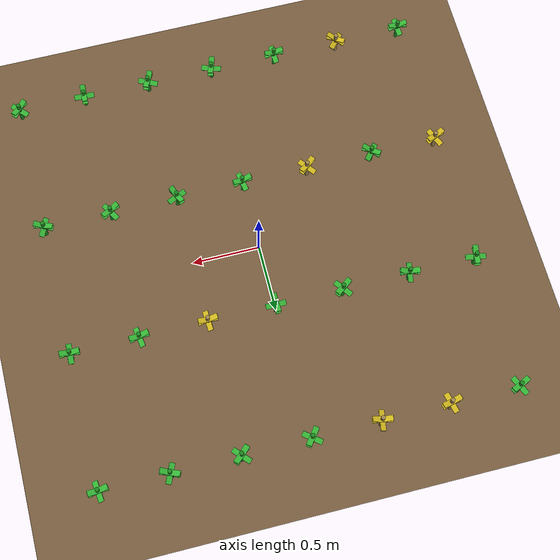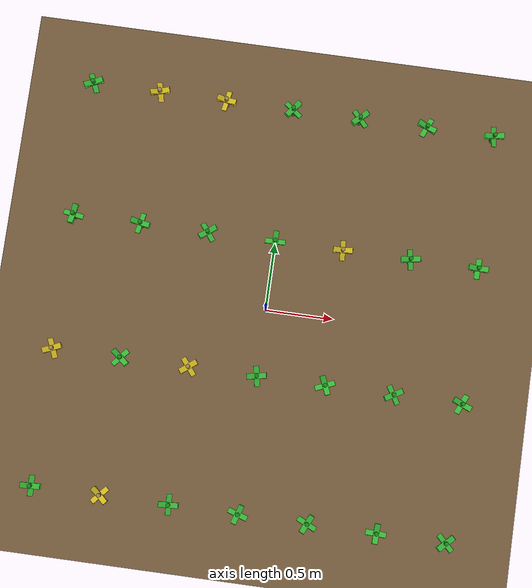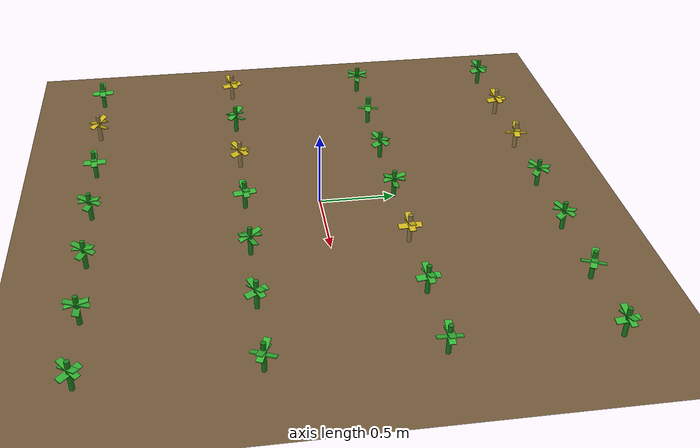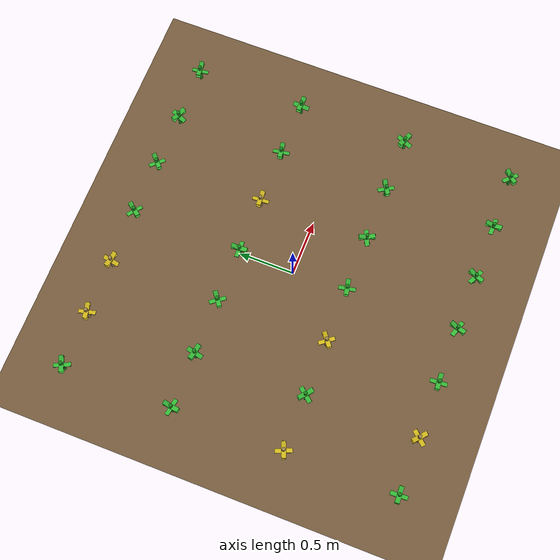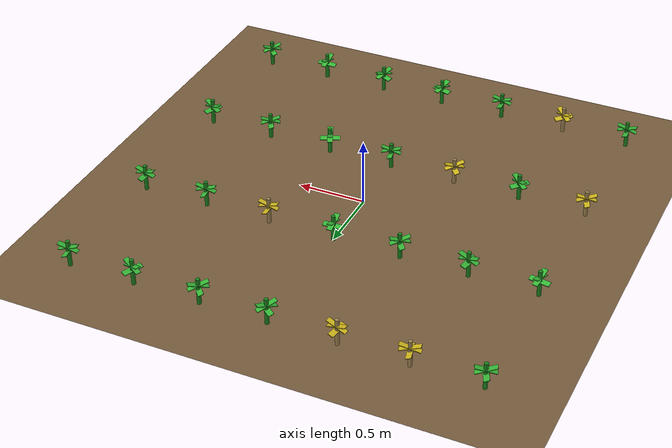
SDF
<sdf version="1.6">
 <world name="farm_world">
  <include><uri>model://sun</uri></include>
  <model name="soil_ground">
   <static>true</static>
   <link name="link">
    <collision name="collision">
     <geometry><plane><normal>0 0 1</normal><size>100 100</size></plane></geometry>
     <surface><friction><ode><mu>100</mu><mu2>50</mu2></ode></friction></surface>
    </collision>
    <visual name="visual">
     <cast_shadows>false</cast_shadows>
     <geometry><plane><normal>0 0 1</normal><size>100 100</size></plane></geometry>
     <material>
      <script><uri>file://media/materials/scripts/gazebo.material</uri><name>Gazebo/Mud</name></script>
      <ambient>0.45 0.35 0.23 1</ambient>
      <diffuse>0.45 0.35 0.23 1</diffuse>
     </material>
    </visual>
   </link>
  </model>
  <model name="plant_28">
   <pose>-1.5 -1.5 0 0 0 0.03999692535958256</pose>
   <static>true</static>
   <link name="link">
    <visual name="stem">
     <pose>0 0 0.1 0 0 0</pose>
     <geometry><cylinder><radius>0.015</radius><length>0.2</length></cylinder></geometry>
     <material><ambient>0.1 0.5 0.1 1</ambient><diffuse>0.1 0.5 0.1 1</diffuse></material>
    </visual>
    <visual name="leaf_1">
     <pose>0 0 0.15 0 0.3 0</pose>
     <geometry><box><size>0.15 0.04 0.005</size></box></geometry>
     <material><ambient>0.2 0.7 0.2 1</ambient><diffuse>0.2 0.7 0.2 1</diffuse></material>
    </visual>
    <visual name="leaf_2">
     <pose>0 0 0.15 0 -0.3 0</pose>
     <geometry><box><size>0.15 0.04 0.005</size></box></geometry>
     <material><ambient>0.2 0.7 0.2 1</ambient><diffuse>0.2 0.7 0.2 1</diffuse></material>
    </visual>
    <visual name="leaf_3">
     <pose>0 0 0.12 0.3 0 1.57</pose>
     <geometry><box><size>0.15 0.04 0.005</size></box></geometry>
     <material><ambient>0.2 0.7 0.2 1</ambient><diffuse>0.2 0.7 0.2 1</diffuse></material>
    </visual>
    <collision name="collision">
     <pose>0 0 0.1 0 0 0</pose>
     <geometry><cylinder><radius>0.05</radius><length>0.2</length></cylinder></geometry>
    </collision>
   </link>
  </model>
  <model name="plant_29">
   <pose>-1.5 -0.5 0 0 0 0.40158374649407036</pose>
   <static>true</static>
   <link name="link">
    <visual name="stem">
     <pose>0 0 0.1 0 0 0</pose>
     <geometry><cylinder><radius>0.015</radius><length>0.2</length></cylinder></geometry>
     <material><ambient>0.6 0.5 0.3 1</ambient><diffuse>0.6 0.5 0.3 1</diffuse></material>
    </visual>
    <visual name="leaf_1">
     <pose>0 0 0.15 0 0.3 0</pose>
     <geometry><box><size>0.15 0.04 0.005</size></box></geometry>
     <material><ambient>0.8 0.7 0.1 1</ambient><diffuse>0.8 0.7 0.1 1</diffuse></material>
    </visual>
    <visual name="leaf_2">
     <pose>0 0 0.15 0 -0.3 0</pose>
     <geometry><box><size>0.15 0.04 0.005</size></box></geometry>
     <material><ambient>0.8 0.7 0.1 1</ambient><diffuse>0.8 0.7 0.1 1</diffuse></material>
    </visual>
    <visual name="leaf_3">
     <pose>0 0 0.12 0.3 0 1.57</pose>
     <geometry><box><size>0.15 0.04 0.005</size></box></geometry>
     <material><ambient>0.8 0.7 0.1 1</ambient><diffuse>0.8 0.7 0.1 1</diffuse></material>
    </visual>
    <collision name="collision">
     <pose>0 0 0.1 0 0 0</pose>
     <geometry><cylinder><radius>0.05</radius><length>0.2</length></cylinder></geometry>
    </collision>
   </link>
  </model>
  <model name="plant_30">
   <pose>-1.5 0.5 0 0 0 1.4055679642116938</pose>
   <static>true</static>
   <link name="link">
    <visual name="stem">
     <pose>0 0 0.1 0 0 0</pose>
     <geometry><cylinder><radius>0.015</radius><length>0.2</length></cylinder></geometry>
     <material><ambient>0.1 0.5 0.1 1</ambient><diffuse>0.1 0.5 0.1 1</diffuse></material>
    </visual>
    <visual name="leaf_1">
     <pose>0 0 0.15 0 0.3 0</pose>
     <geometry><box><size>0.15 0.04 0.005</size></box></geometry>
     <material><ambient>0.2 0.7 0.2 1</ambient><diffuse>0.2 0.7 0.2 1</diffuse></material>
    </visual>
    <visual name="leaf_2">
     <pose>0 0 0.15 0 -0.3 0</pose>
     <geometry><box><size>0.15 0.04 0.005</size></box></geometry>
     <material><ambient>0.2 0.7 0.2 1</ambient><diffuse>0.2 0.7 0.2 1</diffuse></material>
    </visual>
    <visual name="leaf_3">
     <pose>0 0 0.12 0.3 0 1.57</pose>
     <geometry><box><size>0.15 0.04 0.005</size></box></geometry>
     <material><ambient>0.2 0.7 0.2 1</ambient><diffuse>0.2 0.7 0.2 1</diffuse></material>
    </visual>
    <collision name="collision">
     <pose>0 0 0.1 0 0 0</pose>
     <geometry><cylinder><radius>0.05</radius><length>0.2</length></cylinder></geometry>
    </collision>
   </link>
  </model>
  <model name="plant_31">
   <pose>-1.5 1.5 0 0 0 0.42245047115309836</pose>
   <static>true</static>
   <link name="link">
    <visual name="stem">
     <pose>0 0 0.1 0 0 0</pose>
     <geometry><cylinder><radius>0.015</radius><length>0.2</length></cylinder></geometry>
     <material><ambient>0.1 0.5 0.1 1</ambient><diffuse>0.1 0.5 0.1 1</diffuse></material>
    </visual>
    <visual name="leaf_1">
     <pose>0 0 0.15 0 0.3 0</pose>
     <geometry><box><size>0.15 0.04 0.005</size></box></geometry>
     <material><ambient>0.2 0.7 0.2 1</ambient><diffuse>0.2 0.7 0.2 1</diffuse></material>
    </visual>
    <visual name="leaf_2">
     <pose>0 0 0.15 0 -0.3 0</pose>
     <geometry><box><size>0.15 0.04 0.005</size></box></geometry>
     <material><ambient>0.2 0.7 0.2 1</ambient><diffuse>0.2 0.7 0.2 1</diffuse></material>
    </visual>
    <visual name="leaf_3">
     <pose>0 0 0.12 0.3 0 1.57</pose>
     <geometry><box><size>0.15 0.04 0.005</size></box></geometry>
     <material><ambient>0.2 0.7 0.2 1</ambient><diffuse>0.2 0.7 0.2 1</diffuse></material>
    </visual>
    <collision name="collision">
     <pose>0 0 0.1 0 0 0</pose>
     <geometry><cylinder><radius>0.05</radius><length>0.2</length></cylinder></geometry>
    </collision>
   </link>
  </model>
  <model name="plant_32">
   <pose>-1.0 -1.5 0 0 0 2.4127600742564197</pose>
   <static>true</static>
   <link name="link">
    <visual name="stem">
     <pose>0 0 0.1 0 0 0</pose>
     <geometry><cylinder><radius>0.015</radius><length>0.2</length></cylinder></geometry>
     <material><ambient>0.6 0.5 0.3 1</ambient><diffuse>0.6 0.5 0.3 1</diffuse></material>
    </visual>
    <visual name="leaf_1">
     <pose>0 0 0.15 0 0.3 0</pose>
     <geometry><box><size>0.15 0.04 0.005</size></box></geometry>
     <material><ambient>0.8 0.7 0.1 1</ambient><diffuse>0.8 0.7 0.1 1</diffuse></material>
    </visual>
    <visual name="leaf_2">
     <pose>0 0 0.15 0 -0.3 0</pose>
     <geometry><box><size>0.15 0.04 0.005</size></box></geometry>
     <material><ambient>0.8 0.7 0.1 1</ambient><diffuse>0.8 0.7 0.1 1</diffuse></material>
    </visual>
    <visual name="leaf_3">
     <pose>0 0 0.12 0.3 0 1.57</pose>
     <geometry><box><size>0.15 0.04 0.005</size></box></geometry>
     <material><ambient>0.8 0.7 0.1 1</ambient><diffuse>0.8 0.7 0.1 1</diffuse></material>
    </visual>
    <collision name="collision">
     <pose>0 0 0.1 0 0 0</pose>
     <geometry><cylinder><radius>0.05</radius><length>0.2</length></cylinder></geometry>
    </collision>
   </link>
  </model>
  <model name="plant_33">
   <pose>-1.0 -0.5 0 0 0 2.443310556562613</pose>
   <static>true</static>
   <link name="link">
    <visual name="stem">
     <pose>0 0 0.1 0 0 0</pose>
     <geometry><cylinder><radius>0.015</radius><length>0.2</length></cylinder></geometry>
     <material><ambient>0.1 0.5 0.1 1</ambient><diffuse>0.1 0.5 0.1 1</diffuse></material>
    </visual>
    <visual name="leaf_1">
     <pose>0 0 0.15 0 0.3 0</pose>
     <geometry><box><size>0.15 0.04 0.005</size></box></geometry>
     <material><ambient>0.2 0.7 0.2 1</ambient><diffuse>0.2 0.7 0.2 1</diffuse></material>
    </visual>
    <visual name="leaf_2">
     <pose>0 0 0.15 0 -0.3 0</pose>
     <geometry><box><size>0.15 0.04 0.005</size></box></geometry>
     <material><ambient>0.2 0.7 0.2 1</ambient><diffuse>0.2 0.7 0.2 1</diffuse></material>
    </visual>
    <visual name="leaf_3">
     <pose>0 0 0.12 0.3 0 1.57</pose>
     <geometry><box><size>0.15 0.04 0.005</size></box></geometry>
     <material><ambient>0.2 0.7 0.2 1</ambient><diffuse>0.2 0.7 0.2 1</diffuse></material>
    </visual>
    <collision name="collision">
     <pose>0 0 0.1 0 0 0</pose>
     <geometry><cylinder><radius>0.05</radius><length>0.2</length></cylinder></geometry>
    </collision>
   </link>
  </model>
  <model name="plant_34">
   <pose>-1.0 0.5 0 0 0 2.9390886575747928</pose>
   <static>true</static>
   <link name="link">
    <visual name="stem">
     <pose>0 0 0.1 0 0 0</pose>
     <geometry><cylinder><radius>0.015</radius><length>0.2</length></cylinder></geometry>
     <material><ambient>0.1 0.5 0.1 1</ambient><diffuse>0.1 0.5 0.1 1</diffuse></material>
    </visual>
    <visual name="leaf_1">
     <pose>0 0 0.15 0 0.3 0</pose>
     <geometry><box><size>0.15 0.04 0.005</size></box></geometry>
     <material><ambient>0.2 0.7 0.2 1</ambient><diffuse>0.2 0.7 0.2 1</diffuse></material>
    </visual>
    <visual name="leaf_2">
     <pose>0 0 0.15 0 -0.3 0</pose>
     <geometry><box><size>0.15 0.04 0.005</size></box></geometry>
     <material><ambient>0.2 0.7 0.2 1</ambient><diffuse>0.2 0.7 0.2 1</diffuse></material>
    </visual>
    <visual name="leaf_3">
     <pose>0 0 0.12 0.3 0 1.57</pose>
     <geometry><box><size>0.15 0.04 0.005</size></box></geometry>
     <material><ambient>0.2 0.7 0.2 1</ambient><diffuse>0.2 0.7 0.2 1</diffuse></material>
    </visual>
    <collision name="collision">
     <pose>0 0 0.1 0 0 0</pose>
     <geometry><cylinder><radius>0.05</radius><length>0.2</length></cylinder></geometry>
    </collision>
   </link>
  </model>
  <model name="plant_35">
   <pose>-1.0 1.5 0 0 0 0.23374821497194523</pose>
   <static>true</static>
   <link name="link">
    <visual name="stem">
     <pose>0 0 0.1 0 0 0</pose>
     <geometry><cylinder><radius>0.015</radius><length>0.2</length></cylinder></geometry>
     <material><ambient>0.6 0.5 0.3 1</ambient><diffuse>0.6 0.5 0.3 1</diffuse></material>
    </visual>
    <visual name="leaf_1">
     <pose>0 0 0.15 0 0.3 0</pose>
     <geometry><box><size>0.15 0.04 0.005</size></box></geometry>
     <material><ambient>0.8 0.7 0.1 1</ambient><diffuse>0.8 0.7 0.1 1</diffuse></material>
    </visual>
    <visual name="leaf_2">
     <pose>0 0 0.15 0 -0.3 0</pose>
     <geometry><box><size>0.15 0.04 0.005</size></box></geometry>
     <material><ambient>0.8 0.7 0.1 1</ambient><diffuse>0.8 0.7 0.1 1</diffuse></material>
    </visual>
    <visual name="leaf_3">
     <pose>0 0 0.12 0.3 0 1.57</pose>
     <geometry><box><size>0.15 0.04 0.005</size></box></geometry>
     <material><ambient>0.8 0.7 0.1 1</ambient><diffuse>0.8 0.7 0.1 1</diffuse></material>
    </visual>
    <collision name="collision">
     <pose>0 0 0.1 0 0 0</pose>
     <geometry><cylinder><radius>0.05</radius><length>0.2</length></cylinder></geometry>
    </collision>
   </link>
  </model>
  <model name="plant_36">
   <pose>-0.5 -1.5 0 0 0 0.05030886176328195</pose>
   <static>true</static>
   <link name="link">
    <visual name="stem">
     <pose>0 0 0.1 0 0 0</pose>
     <geometry><cylinder><radius>0.015</radius><length>0.2</length></cylinder></geometry>
     <material><ambient>0.1 0.5 0.1 1</ambient><diffuse>0.1 0.5 0.1 1</diffuse></material>
    </visual>
    <visual name="leaf_1">
     <pose>0 0 0.15 0 0.3 0</pose>
     <geometry><box><size>0.15 0.04 0.005</size></box></geometry>
     <material><ambient>0.2 0.7 0.2 1</ambient><diffuse>0.2 0.7 0.2 1</diffuse></material>
    </visual>
    <visual name="leaf_2">
     <pose>0 0 0.15 0 -0.3 0</pose>
     <geometry><box><size>0.15 0.04 0.005</size></box></geometry>
     <material><ambient>0.2 0.7 0.2 1</ambient><diffuse>0.2 0.7 0.2 1</diffuse></material>
    </visual>
    <visual name="leaf_3">
     <pose>0 0 0.12 0.3 0 1.57</pose>
     <geometry><box><size>0.15 0.04 0.005</size></box></geometry>
     <material><ambient>0.2 0.7 0.2 1</ambient><diffuse>0.2 0.7 0.2 1</diffuse></material>
    </visual>
    <collision name="collision">
     <pose>0 0 0.1 0 0 0</pose>
     <geometry><cylinder><radius>0.05</radius><length>0.2</length></cylinder></geometry>
    </collision>
   </link>
  </model>
  <model name="plant_37">
   <pose>-0.5 -0.5 0 0 0 0.6674229697945631</pose>
   <static>true</static>
   <link name="link">
    <visual name="stem">
     <pose>0 0 0.1 0 0 0</pose>
     <geometry><cylinder><radius>0.015</radius><length>0.2</length></cylinder></geometry>
     <material><ambient>0.6 0.5 0.3 1</ambient><diffuse>0.6 0.5 0.3 1</diffuse></material>
    </visual>
    <visual name="leaf_1">
     <pose>0 0 0.15 0 0.3 0</pose>
     <geometry><box><size>0.15 0.04 0.005</size></box></geometry>
     <material><ambient>0.8 0.7 0.1 1</ambient><diffuse>0.8 0.7 0.1 1</diffuse></material>
    </visual>
    <visual name="leaf_2">
     <pose>0 0 0.15 0 -0.3 0</pose>
     <geometry><box><size>0.15 0.04 0.005</size></box></geometry>
     <material><ambient>0.8 0.7 0.1 1</ambient><diffuse>0.8 0.7 0.1 1</diffuse></material>
    </visual>
    <visual name="leaf_3">
     <pose>0 0 0.12 0.3 0 1.57</pose>
     <geometry><box><size>0.15 0.04 0.005</size></box></geometry>
     <material><ambient>0.8 0.7 0.1 1</ambient><diffuse>0.8 0.7 0.1 1</diffuse></material>
    </visual>
    <collision name="collision">
     <pose>0 0 0.1 0 0 0</pose>
     <geometry><cylinder><radius>0.05</radius><length>0.2</length></cylinder></geometry>
    </collision>
   </link>
  </model>
  <model name="plant_38">
   <pose>-0.5 0.5 0 0 0 0.6406084837413049</pose>
   <static>true</static>
   <link name="link">
    <visual name="stem">
     <pose>0 0 0.1 0 0 0</pose>
     <geometry><cylinder><radius>0.015</radius><length>0.2</length></cylinder></geometry>
     <material><ambient>0.1 0.5 0.1 1</ambient><diffuse>0.1 0.5 0.1 1</diffuse></material>
    </visual>
    <visual name="leaf_1">
     <pose>0 0 0.15 0 0.3 0</pose>
     <geometry><box><size>0.15 0.04 0.005</size></box></geometry>
     <material><ambient>0.2 0.7 0.2 1</ambient><diffuse>0.2 0.7 0.2 1</diffuse></material>
    </visual>
    <visual name="leaf_2">
     <pose>0 0 0.15 0 -0.3 0</pose>
     <geometry><box><size>0.15 0.04 0.005</size></box></geometry>
     <material><ambient>0.2 0.7 0.2 1</ambient><diffuse>0.2 0.7 0.2 1</diffuse></material>
    </visual>
    <visual name="leaf_3">
     <pose>0 0 0.12 0.3 0 1.57</pose>
     <geometry><box><size>0.15 0.04 0.005</size></box></geometry>
     <material><ambient>0.2 0.7 0.2 1</ambient><diffuse>0.2 0.7 0.2 1</diffuse></material>
    </visual>
    <collision name="collision">
     <pose>0 0 0.1 0 0 0</pose>
     <geometry><cylinder><radius>0.05</radius><length>0.2</length></cylinder></geometry>
    </collision>
   </link>
  </model>
  <model name="plant_39">
   <pose>-0.5 1.5 0 0 0 2.9637764135964964</pose>
   <static>true</static>
   <link name="link">
    <visual name="stem">
     <pose>0 0 0.1 0 0 0</pose>
     <geometry><cylinder><radius>0.015</radius><length>0.2</length></cylinder></geometry>
     <material><ambient>0.6 0.5 0.3 1</ambient><diffuse>0.6 0.5 0.3 1</diffuse></material>
    </visual>
    <visual name="leaf_1">
     <pose>0 0 0.15 0 0.3 0</pose>
     <geometry><box><size>0.15 0.04 0.005</size></box></geometry>
     <material><ambient>0.8 0.7 0.1 1</ambient><diffuse>0.8 0.7 0.1 1</diffuse></material>
    </visual>
    <visual name="leaf_2">
     <pose>0 0 0.15 0 -0.3 0</pose>
     <geometry><box><size>0.15 0.04 0.005</size></box></geometry>
     <material><ambient>0.8 0.7 0.1 1</ambient><diffuse>0.8 0.7 0.1 1</diffuse></material>
    </visual>
    <visual name="leaf_3">
     <pose>0 0 0.12 0.3 0 1.57</pose>
     <geometry><box><size>0.15 0.04 0.005</size></box></geometry>
     <material><ambient>0.8 0.7 0.1 1</ambient><diffuse>0.8 0.7 0.1 1</diffuse></material>
    </visual>
    <collision name="collision">
     <pose>0 0 0.1 0 0 0</pose>
     <geometry><cylinder><radius>0.05</radius><length>0.2</length></cylinder></geometry>
    </collision>
   </link>
  </model>
  <model name="plant_40">
   <pose>0.0 -1.5 0 0 0 1.2510831190715879</pose>
   <static>true</static>
   <link name="link">
    <visual name="stem">
     <pose>0 0 0.1 0 0 0</pose>
     <geometry><cylinder><radius>0.015</radius><length>0.2</length></cylinder></geometry>
     <material><ambient>0.1 0.5 0.1 1</ambient><diffuse>0.1 0.5 0.1 1</diffuse></material>
    </visual>
    <visual name="leaf_1">
     <pose>0 0 0.15 0 0.3 0</pose>
     <geometry><box><size>0.15 0.04 0.005</size></box></geometry>
     <material><ambient>0.2 0.7 0.2 1</ambient><diffuse>0.2 0.7 0.2 1</diffuse></material>
    </visual>
    <visual name="leaf_2">
     <pose>0 0 0.15 0 -0.3 0</pose>
     <geometry><box><size>0.15 0.04 0.005</size></box></geometry>
     <material><ambient>0.2 0.7 0.2 1</ambient><diffuse>0.2 0.7 0.2 1</diffuse></material>
    </visual>
    <visual name="leaf_3">
     <pose>0 0 0.12 0.3 0 1.57</pose>
     <geometry><box><size>0.15 0.04 0.005</size></box></geometry>
     <material><ambient>0.2 0.7 0.2 1</ambient><diffuse>0.2 0.7 0.2 1</diffuse></material>
    </visual>
    <collision name="collision">
     <pose>0 0 0.1 0 0 0</pose>
     <geometry><cylinder><radius>0.05</radius><length>0.2</length></cylinder></geometry>
    </collision>
   </link>
  </model>
  <model name="plant_41">
   <pose>0.0 -0.5 0 0 0 0.18552504039530646</pose>
   <static>true</static>
   <link name="link">
    <visual name="stem">
     <pose>0 0 0.1 0 0 0</pose>
     <geometry><cylinder><radius>0.015</radius><length>0.2</length></cylinder></geometry>
     <material><ambient>0.1 0.5 0.1 1</ambient><diffuse>0.1 0.5 0.1 1</diffuse></material>
    </visual>
    <visual name="leaf_1">
     <pose>0 0 0.15 0 0.3 0</pose>
     <geometry><box><size>0.15 0.04 0.005</size></box></geometry>
     <material><ambient>0.2 0.7 0.2 1</ambient><diffuse>0.2 0.7 0.2 1</diffuse></material>
    </visual>
    <visual name="leaf_2">
     <pose>0 0 0.15 0 -0.3 0</pose>
     <geometry><box><size>0.15 0.04 0.005</size></box></geometry>
     <material><ambient>0.2 0.7 0.2 1</ambient><diffuse>0.2 0.7 0.2 1</diffuse></material>
    </visual>
    <visual name="leaf_3">
     <pose>0 0 0.12 0.3 0 1.57</pose>
     <geometry><box><size>0.15 0.04 0.005</size></box></geometry>
     <material><ambient>0.2 0.7 0.2 1</ambient><diffuse>0.2 0.7 0.2 1</diffuse></material>
    </visual>
    <collision name="collision">
     <pose>0 0 0.1 0 0 0</pose>
     <geometry><cylinder><radius>0.05</radius><length>0.2</length></cylinder></geometry>
    </collision>
   </link>
  </model>
  <model name="plant_42">
   <pose>0.0 0.5 0 0 0 1.5836986242032711</pose>
   <static>true</static>
   <link name="link">
    <visual name="stem">
     <pose>0 0 0.1 0 0 0</pose>
     <geometry><cylinder><radius>0.015</radius><length>0.2</length></cylinder></geometry>
     <material><ambient>0.1 0.5 0.1 1</ambient><diffuse>0.1 0.5 0.1 1</diffuse></material>
    </visual>
    <visual name="leaf_1">
     <pose>0 0 0.15 0 0.3 0</pose>
     <geometry><box><size>0.15 0.04 0.005</size></box></geometry>
     <material><ambient>0.2 0.7 0.2 1</ambient><diffuse>0.2 0.7 0.2 1</diffuse></material>
    </visual>
    <visual name="leaf_2">
     <pose>0 0 0.15 0 -0.3 0</pose>
     <geometry><box><size>0.15 0.04 0.005</size></box></geometry>
     <material><ambient>0.2 0.7 0.2 1</ambient><diffuse>0.2 0.7 0.2 1</diffuse></material>
    </visual>
    <visual name="leaf_3">
     <pose>0 0 0.12 0.3 0 1.57</pose>
     <geometry><box><size>0.15 0.04 0.005</size></box></geometry>
     <material><ambient>0.2 0.7 0.2 1</ambient><diffuse>0.2 0.7 0.2 1</diffuse></material>
    </visual>
    <collision name="collision">
     <pose>0 0 0.1 0 0 0</pose>
     <geometry><cylinder><radius>0.05</radius><length>0.2</length></cylinder></geometry>
    </collision>
   </link>
  </model>
  <model name="plant_43">
   <pose>0.0 1.5 0 0 0 0.9057283109985189</pose>
   <static>true</static>
   <link name="link">
    <visual name="stem">
     <pose>0 0 0.1 0 0 0</pose>
     <geometry><cylinder><radius>0.015</radius><length>0.2</length></cylinder></geometry>
     <material><ambient>0.1 0.5 0.1 1</ambient><diffuse>0.1 0.5 0.1 1</diffuse></material>
    </visual>
    <visual name="leaf_1">
     <pose>0 0 0.15 0 0.3 0</pose>
     <geometry><box><size>0.15 0.04 0.005</size></box></geometry>
     <material><ambient>0.2 0.7 0.2 1</ambient><diffuse>0.2 0.7 0.2 1</diffuse></material>
    </visual>
    <visual name="leaf_2">
     <pose>0 0 0.15 0 -0.3 0</pose>
     <geometry><box><size>0.15 0.04 0.005</size></box></geometry>
     <material><ambient>0.2 0.7 0.2 1</ambient><diffuse>0.2 0.7 0.2 1</diffuse></material>
    </visual>
    <visual name="leaf_3">
     <pose>0 0 0.12 0.3 0 1.57</pose>
     <geometry><box><size>0.15 0.04 0.005</size></box></geometry>
     <material><ambient>0.2 0.7 0.2 1</ambient><diffuse>0.2 0.7 0.2 1</diffuse></material>
    </visual>
    <collision name="collision">
     <pose>0 0 0.1 0 0 0</pose>
     <geometry><cylinder><radius>0.05</radius><length>0.2</length></cylinder></geometry>
    </collision>
   </link>
  </model>
  <model name="plant_44">
   <pose>0.5 -1.5 0 0 0 1.1228920320354006</pose>
   <static>true</static>
   <link name="link">
    <visual name="stem">
     <pose>0 0 0.1 0 0 0</pose>
     <geometry><cylinder><radius>0.015</radius><length>0.2</length></cylinder></geometry>
     <material><ambient>0.1 0.5 0.1 1</ambient><diffuse>0.1 0.5 0.1 1</diffuse></material>
    </visual>
    <visual name="leaf_1">
     <pose>0 0 0.15 0 0.3 0</pose>
     <geometry><box><size>0.15 0.04 0.005</size></box></geometry>
     <material><ambient>0.2 0.7 0.2 1</ambient><diffuse>0.2 0.7 0.2 1</diffuse></material>
    </visual>
    <visual name="leaf_2">
     <pose>0 0 0.15 0 -0.3 0</pose>
     <geometry><box><size>0.15 0.04 0.005</size></box></geometry>
     <material><ambient>0.2 0.7 0.2 1</ambient><diffuse>0.2 0.7 0.2 1</diffuse></material>
    </visual>
    <visual name="leaf_3">
     <pose>0 0 0.12 0.3 0 1.57</pose>
     <geometry><box><size>0.15 0.04 0.005</size></box></geometry>
     <material><ambient>0.2 0.7 0.2 1</ambient><diffuse>0.2 0.7 0.2 1</diffuse></material>
    </visual>
    <collision name="collision">
     <pose>0 0 0.1 0 0 0</pose>
     <geometry><cylinder><radius>0.05</radius><length>0.2</length></cylinder></geometry>
    </collision>
   </link>
  </model>
  <model name="plant_45">
   <pose>0.5 -0.5 0 0 0 1.9766463491253528</pose>
   <static>true</static>
   <link name="link">
    <visual name="stem">
     <pose>0 0 0.1 0 0 0</pose>
     <geometry><cylinder><radius>0.015</radius><length>0.2</length></cylinder></geometry>
     <material><ambient>0.1 0.5 0.1 1</ambient><diffuse>0.1 0.5 0.1 1</diffuse></material>
    </visual>
    <visual name="leaf_1">
     <pose>0 0 0.15 0 0.3 0</pose>
     <geometry><box><size>0.15 0.04 0.005</size></box></geometry>
     <material><ambient>0.2 0.7 0.2 1</ambient><diffuse>0.2 0.7 0.2 1</diffuse></material>
    </visual>
    <visual name="leaf_2">
     <pose>0 0 0.15 0 -0.3 0</pose>
     <geometry><box><size>0.15 0.04 0.005</size></box></geometry>
     <material><ambient>0.2 0.7 0.2 1</ambient><diffuse>0.2 0.7 0.2 1</diffuse></material>
    </visual>
    <visual name="leaf_3">
     <pose>0 0 0.12 0.3 0 1.57</pose>
     <geometry><box><size>0.15 0.04 0.005</size></box></geometry>
     <material><ambient>0.2 0.7 0.2 1</ambient><diffuse>0.2 0.7 0.2 1</diffuse></material>
    </visual>
    <collision name="collision">
     <pose>0 0 0.1 0 0 0</pose>
     <geometry><cylinder><radius>0.05</radius><length>0.2</length></cylinder></geometry>
    </collision>
   </link>
  </model>
  <model name="plant_46">
   <pose>0.5 0.5 0 0 0 0.05387098421533524</pose>
   <static>true</static>
   <link name="link">
    <visual name="stem">
     <pose>0 0 0.1 0 0 0</pose>
     <geometry><cylinder><radius>0.015</radius><length>0.2</length></cylinder></geometry>
     <material><ambient>0.6 0.5 0.3 1</ambient><diffuse>0.6 0.5 0.3 1</diffuse></material>
    </visual>
    <visual name="leaf_1">
     <pose>0 0 0.15 0 0.3 0</pose>
     <geometry><box><size>0.15 0.04 0.005</size></box></geometry>
     <material><ambient>0.8 0.7 0.1 1</ambient><diffuse>0.8 0.7 0.1 1</diffuse></material>
    </visual>
    <visual name="leaf_2">
     <pose>0 0 0.15 0 -0.3 0</pose>
     <geometry><box><size>0.15 0.04 0.005</size></box></geometry>
     <material><ambient>0.8 0.7 0.1 1</ambient><diffuse>0.8 0.7 0.1 1</diffuse></material>
    </visual>
    <visual name="leaf_3">
     <pose>0 0 0.12 0.3 0 1.57</pose>
     <geometry><box><size>0.15 0.04 0.005</size></box></geometry>
     <material><ambient>0.8 0.7 0.1 1</ambient><diffuse>0.8 0.7 0.1 1</diffuse></material>
    </visual>
    <collision name="collision">
     <pose>0 0 0.1 0 0 0</pose>
     <geometry><cylinder><radius>0.05</radius><length>0.2</length></cylinder></geometry>
    </collision>
   </link>
  </model>
  <model name="plant_47">
   <pose>0.5 1.5 0 0 0 0.7414021916877371</pose>
   <static>true</static>
   <link name="link">
    <visual name="stem">
     <pose>0 0 0.1 0 0 0</pose>
     <geometry><cylinder><radius>0.015</radius><length>0.2</length></cylinder></geometry>
     <material><ambient>0.1 0.5 0.1 1</ambient><diffuse>0.1 0.5 0.1 1</diffuse></material>
    </visual>
    <visual name="leaf_1">
     <pose>0 0 0.15 0 0.3 0</pose>
     <geometry><box><size>0.15 0.04 0.005</size></box></geometry>
     <material><ambient>0.2 0.7 0.2 1</ambient><diffuse>0.2 0.7 0.2 1</diffuse></material>
    </visual>
    <visual name="leaf_2">
     <pose>0 0 0.15 0 -0.3 0</pose>
     <geometry><box><size>0.15 0.04 0.005</size></box></geometry>
     <material><ambient>0.2 0.7 0.2 1</ambient><diffuse>0.2 0.7 0.2 1</diffuse></material>
    </visual>
    <visual name="leaf_3">
     <pose>0 0 0.12 0.3 0 1.57</pose>
     <geometry><box><size>0.15 0.04 0.005</size></box></geometry>
     <material><ambient>0.2 0.7 0.2 1</ambient><diffuse>0.2 0.7 0.2 1</diffuse></material>
    </visual>
    <collision name="collision">
     <pose>0 0 0.1 0 0 0</pose>
     <geometry><cylinder><radius>0.05</radius><length>0.2</length></cylinder></geometry>
    </collision>
   </link>
  </model>
  <model name="plant_48">
   <pose>1.0 -1.5 0 0 0 1.525987469140043</pose>
   <static>true</static>
   <link name="link">
    <visual name="stem">
     <pose>0 0 0.1 0 0 0</pose>
     <geometry><cylinder><radius>0.015</radius><length>0.2</length></cylinder></geometry>
     <material><ambient>0.1 0.5 0.1 1</ambient><diffuse>0.1 0.5 0.1 1</diffuse></material>
    </visual>
    <visual name="leaf_1">
     <pose>0 0 0.15 0 0.3 0</pose>
     <geometry><box><size>0.15 0.04 0.005</size></box></geometry>
     <material><ambient>0.2 0.7 0.2 1</ambient><diffuse>0.2 0.7 0.2 1</diffuse></material>
    </visual>
    <visual name="leaf_2">
     <pose>0 0 0.15 0 -0.3 0</pose>
     <geometry><box><size>0.15 0.04 0.005</size></box></geometry>
     <material><ambient>0.2 0.7 0.2 1</ambient><diffuse>0.2 0.7 0.2 1</diffuse></material>
    </visual>
    <visual name="leaf_3">
     <pose>0 0 0.12 0.3 0 1.57</pose>
     <geometry><box><size>0.15 0.04 0.005</size></box></geometry>
     <material><ambient>0.2 0.7 0.2 1</ambient><diffuse>0.2 0.7 0.2 1</diffuse></material>
    </visual>
    <collision name="collision">
     <pose>0 0 0.1 0 0 0</pose>
     <geometry><cylinder><radius>0.05</radius><length>0.2</length></cylinder></geometry>
    </collision>
   </link>
  </model>
  <model name="plant_49">
   <pose>1.0 -0.5 0 0 0 0.5321621833742816</pose>
   <static>true</static>
   <link name="link">
    <visual name="stem">
     <pose>0 0 0.1 0 0 0</pose>
     <geometry><cylinder><radius>0.015</radius><length>0.2</length></cylinder></geometry>
     <material><ambient>0.1 0.5 0.1 1</ambient><diffuse>0.1 0.5 0.1 1</diffuse></material>
    </visual>
    <visual name="leaf_1">
     <pose>0 0 0.15 0 0.3 0</pose>
     <geometry><box><size>0.15 0.04 0.005</size></box></geometry>
     <material><ambient>0.2 0.7 0.2 1</ambient><diffuse>0.2 0.7 0.2 1</diffuse></material>
    </visual>
    <visual name="leaf_2">
     <pose>0 0 0.15 0 -0.3 0</pose>
     <geometry><box><size>0.15 0.04 0.005</size></box></geometry>
     <material><ambient>0.2 0.7 0.2 1</ambient><diffuse>0.2 0.7 0.2 1</diffuse></material>
    </visual>
    <visual name="leaf_3">
     <pose>0 0 0.12 0.3 0 1.57</pose>
     <geometry><box><size>0.15 0.04 0.005</size></box></geometry>
     <material><ambient>0.2 0.7 0.2 1</ambient><diffuse>0.2 0.7 0.2 1</diffuse></material>
    </visual>
    <collision name="collision">
     <pose>0 0 0.1 0 0 0</pose>
     <geometry><cylinder><radius>0.05</radius><length>0.2</length></cylinder></geometry>
    </collision>
   </link>
  </model>
  <model name="plant_50">
   <pose>1.0 0.5 0 0 0 0.15095374121250374</pose>
   <static>true</static>
   <link name="link">
    <visual name="stem">
     <pose>0 0 0.1 0 0 0</pose>
     <geometry><cylinder><radius>0.015</radius><length>0.2</length></cylinder></geometry>
     <material><ambient>0.1 0.5 0.1 1</ambient><diffuse>0.1 0.5 0.1 1</diffuse></material>
    </visual>
    <visual name="leaf_1">
     <pose>0 0 0.15 0 0.3 0</pose>
     <geometry><box><size>0.15 0.04 0.005</size></box></geometry>
     <material><ambient>0.2 0.7 0.2 1</ambient><diffuse>0.2 0.7 0.2 1</diffuse></material>
    </visual>
    <visual name="leaf_2">
     <pose>0 0 0.15 0 -0.3 0</pose>
     <geometry><box><size>0.15 0.04 0.005</size></box></geometry>
     <material><ambient>0.2 0.7 0.2 1</ambient><diffuse>0.2 0.7 0.2 1</diffuse></material>
    </visual>
    <visual name="leaf_3">
     <pose>0 0 0.12 0.3 0 1.57</pose>
     <geometry><box><size>0.15 0.04 0.005</size></box></geometry>
     <material><ambient>0.2 0.7 0.2 1</ambient><diffuse>0.2 0.7 0.2 1</diffuse></material>
    </visual>
    <collision name="collision">
     <pose>0 0 0.1 0 0 0</pose>
     <geometry><cylinder><radius>0.05</radius><length>0.2</length></cylinder></geometry>
    </collision>
   </link>
  </model>
  <model name="plant_51">
   <pose>1.0 1.5 0 0 0 2.7295816813779434</pose>
   <static>true</static>
   <link name="link">
    <visual name="stem">
     <pose>0 0 0.1 0 0 0</pose>
     <geometry><cylinder><radius>0.015</radius><length>0.2</length></cylinder></geometry>
     <material><ambient>0.1 0.5 0.1 1</ambient><diffuse>0.1 0.5 0.1 1</diffuse></material>
    </visual>
    <visual name="leaf_1">
     <pose>0 0 0.15 0 0.3 0</pose>
     <geometry><box><size>0.15 0.04 0.005</size></box></geometry>
     <material><ambient>0.2 0.7 0.2 1</ambient><diffuse>0.2 0.7 0.2 1</diffuse></material>
    </visual>
    <visual name="leaf_2">
     <pose>0 0 0.15 0 -0.3 0</pose>
     <geometry><box><size>0.15 0.04 0.005</size></box></geometry>
     <material><ambient>0.2 0.7 0.2 1</ambient><diffuse>0.2 0.7 0.2 1</diffuse></material>
    </visual>
    <visual name="leaf_3">
     <pose>0 0 0.12 0.3 0 1.57</pose>
     <geometry><box><size>0.15 0.04 0.005</size></box></geometry>
     <material><ambient>0.2 0.7 0.2 1</ambient><diffuse>0.2 0.7 0.2 1</diffuse></material>
    </visual>
    <collision name="collision">
     <pose>0 0 0.1 0 0 0</pose>
     <geometry><cylinder><radius>0.05</radius><length>0.2</length></cylinder></geometry>
    </collision>
   </link>
  </model>
  <model name="plant_52">
   <pose>1.5 -1.5 0 0 0 0.776852880328393</pose>
   <static>true</static>
   <link name="link">
    <visual name="stem">
     <pose>0 0 0.1 0 0 0</pose>
     <geometry><cylinder><radius>0.015</radius><length>0.2</length></cylinder></geometry>
     <material><ambient>0.1 0.5 0.1 1</ambient><diffuse>0.1 0.5 0.1 1</diffuse></material>
    </visual>
    <visual name="leaf_1">
     <pose>0 0 0.15 0 0.3 0</pose>
     <geometry><box><size>0.15 0.04 0.005</size></box></geometry>
     <material><ambient>0.2 0.7 0.2 1</ambient><diffuse>0.2 0.7 0.2 1</diffuse></material>
    </visual>
    <visual name="leaf_2">
     <pose>0 0 0.15 0 -0.3 0</pose>
     <geometry><box><size>0.15 0.04 0.005</size></box></geometry>
     <material><ambient>0.2 0.7 0.2 1</ambient><diffuse>0.2 0.7 0.2 1</diffuse></material>
    </visual>
    <visual name="leaf_3">
     <pose>0 0 0.12 0.3 0 1.57</pose>
     <geometry><box><size>0.15 0.04 0.005</size></box></geometry>
     <material><ambient>0.2 0.7 0.2 1</ambient><diffuse>0.2 0.7 0.2 1</diffuse></material>
    </visual>
    <collision name="collision">
     <pose>0 0 0.1 0 0 0</pose>
     <geometry><cylinder><radius>0.05</radius><length>0.2</length></cylinder></geometry>
    </collision>
   </link>
  </model>
  <model name="plant_53">
   <pose>1.5 -0.5 0 0 0 2.7265198351567856</pose>
   <static>true</static>
   <link name="link">
    <visual name="stem">
     <pose>0 0 0.1 0 0 0</pose>
     <geometry><cylinder><radius>0.015</radius><length>0.2</length></cylinder></geometry>
     <material><ambient>0.1 0.5 0.1 1</ambient><diffuse>0.1 0.5 0.1 1</diffuse></material>
    </visual>
    <visual name="leaf_1">
     <pose>0 0 0.15 0 0.3 0</pose>
     <geometry><box><size>0.15 0.04 0.005</size></box></geometry>
     <material><ambient>0.2 0.7 0.2 1</ambient><diffuse>0.2 0.7 0.2 1</diffuse></material>
    </visual>
    <visual name="leaf_2">
     <pose>0 0 0.15 0 -0.3 0</pose>
     <geometry><box><size>0.15 0.04 0.005</size></box></geometry>
     <material><ambient>0.2 0.7 0.2 1</ambient><diffuse>0.2 0.7 0.2 1</diffuse></material>
    </visual>
    <visual name="leaf_3">
     <pose>0 0 0.12 0.3 0 1.57</pose>
     <geometry><box><size>0.15 0.04 0.005</size></box></geometry>
     <material><ambient>0.2 0.7 0.2 1</ambient><diffuse>0.2 0.7 0.2 1</diffuse></material>
    </visual>
    <collision name="collision">
     <pose>0 0 0.1 0 0 0</pose>
     <geometry><cylinder><radius>0.05</radius><length>0.2</length></cylinder></geometry>
    </collision>
   </link>
  </model>
  <model name="plant_54">
   <pose>1.5 0.5 0 0 0 3.102000053085319</pose>
   <static>true</static>
   <link name="link">
    <visual name="stem">
     <pose>0 0 0.1 0 0 0</pose>
     <geometry><cylinder><radius>0.015</radius><length>0.2</length></cylinder></geometry>
     <material><ambient>0.1 0.5 0.1 1</ambient><diffuse>0.1 0.5 0.1 1</diffuse></material>
    </visual>
    <visual name="leaf_1">
     <pose>0 0 0.15 0 0.3 0</pose>
     <geometry><box><size>0.15 0.04 0.005</size></box></geometry>
     <material><ambient>0.2 0.7 0.2 1</ambient><diffuse>0.2 0.7 0.2 1</diffuse></material>
    </visual>
    <visual name="leaf_2">
     <pose>0 0 0.15 0 -0.3 0</pose>
     <geometry><box><size>0.15 0.04 0.005</size></box></geometry>
     <material><ambient>0.2 0.7 0.2 1</ambient><diffuse>0.2 0.7 0.2 1</diffuse></material>
    </visual>
    <visual name="leaf_3">
     <pose>0 0 0.12 0.3 0 1.57</pose>
     <geometry><box><size>0.15 0.04 0.005</size></box></geometry>
     <material><ambient>0.2 0.7 0.2 1</ambient><diffuse>0.2 0.7 0.2 1</diffuse></material>
    </visual>
    <collision name="collision">
     <pose>0 0 0.1 0 0 0</pose>
     <geometry><cylinder><radius>0.05</radius><length>0.2</length></cylinder></geometry>
    </collision>
   </link>
  </model>
  <model name="plant_55">
   <pose>1.5 1.5 0 0 0 0.12692290443992893</pose>
   <static>true</static>
   <link name="link">
    <visual name="stem">
     <pose>0 0 0.1 0 0 0</pose>
     <geometry><cylinder><radius>0.015</radius><length>0.2</length></cylinder></geometry>
     <material><ambient>0.1 0.5 0.1 1</ambient><diffuse>0.1 0.5 0.1 1</diffuse></material>
    </visual>
    <visual name="leaf_1">
     <pose>0 0 0.15 0 0.3 0</pose>
     <geometry><box><size>0.15 0.04 0.005</size></box></geometry>
     <material><ambient>0.2 0.7 0.2 1</ambient><diffuse>0.2 0.7 0.2 1</diffuse></material>
    </visual>
    <visual name="leaf_2">
     <pose>0 0 0.15 0 -0.3 0</pose>
     <geometry><box><size>0.15 0.04 0.005</size></box></geometry>
     <material><ambient>0.2 0.7 0.2 1</ambient><diffuse>0.2 0.7 0.2 1</diffuse></material>
    </visual>
    <visual name="leaf_3">
     <pose>0 0 0.12 0.3 0 1.57</pose>
     <geometry><box><size>0.15 0.04 0.005</size></box></geometry>
     <material><ambient>0.2 0.7 0.2 1</ambient><diffuse>0.2 0.7 0.2 1</diffuse></material>
    </visual>
    <collision name="collision">
     <pose>0 0 0.1 0 0 0</pose>
     <geometry><cylinder><radius>0.05</radius><length>0.2</length></cylinder></geometry>
    </collision>
   </link>
  </model>
 </world>
</sdf>
